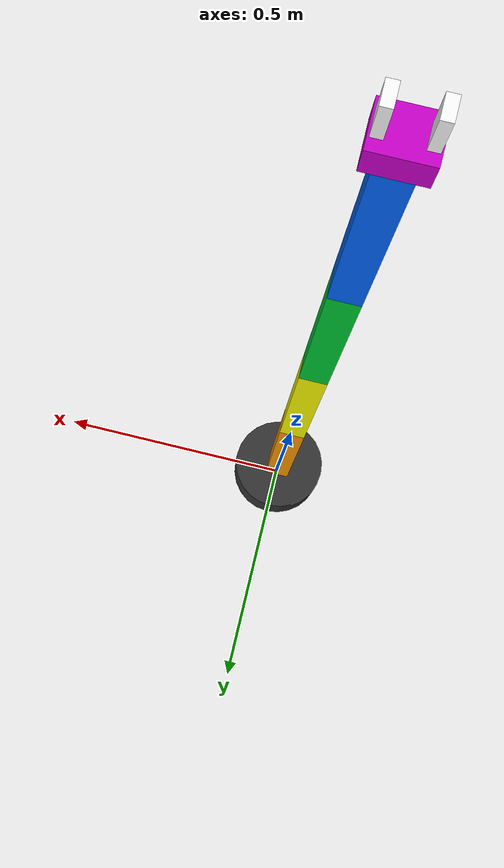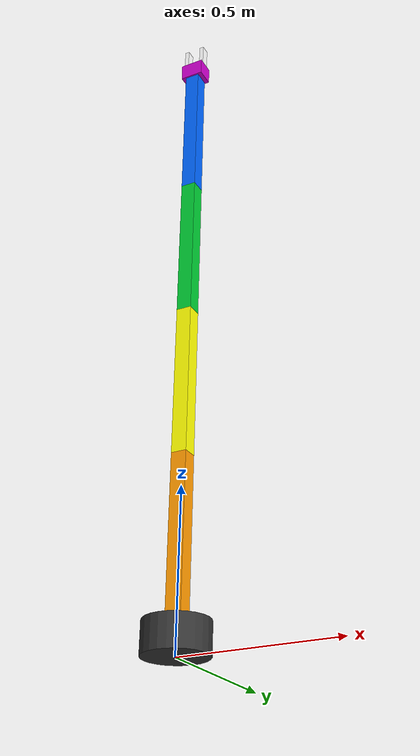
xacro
<?xml version="1.0"?>
<robot xmlns:xacro="http://www.ros.org/wiki/xacro" name="my_robot">
    <xacro:arg name="initial_positions_file" default="$(find my_robot_moveit_config)/config/initial_positions.yaml" />

    <!-- Import my_robot urdf file -->
    <xacro:include filename="$(find my_robot_description)/urdf/my_robot.urdf" />

    <!-- Import control_xacro -->
    <xacro:include filename="$(find my_robot_description)/urdf/my_robot.ros2_control_rviz.xacro" />

    <xacro:my_robot_ros2_control name="FakeSystem" initial_positions_file="$(find my_robot_moveit_config)/config/initial_positions.yaml"/>

</robot>

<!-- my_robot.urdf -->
<!-- |    This document was autogenerated by xacro from my_robot.urdf.xacro            | -->
<!-- |    EDITING THIS FILE BY HAND IS NOT RECOMMENDED                                 | -->
<robot name="my_robot">
  <link name="world"/>

  <joint name="virtual_joint" type="fixed">
    <parent link="world"/>
    <child link="base_link"/>
    <origin xyz="0 0 0" rpy="0 0 0"/>
  </joint>
  <link name="base_link">
    <visual>
      <geometry>
        <cylinder length="0.1" radius="0.1"/>
      </geometry>
      <origin rpy="0 0 0" xyz="0 0 0.05"/>
      <material name="gray">
        <color rgba="0.2 0.2 0.2 1"/>
      </material>
    </visual>
    <collision>
      <geometry>
        <cylinder length="0.1" radius="0.1"/>
      </geometry>
      <origin rpy="0 0 0" xyz="0 0 0.05"/>
    </collision>
    <inertial>
      <mass value="10.0"/>
      <inertia ixx="0.03333333333333334" ixy="0.0" ixz="0.0" iyy="0.03333333333333334" iyz="0.0" izz="0.05000000000000001"/>
    </inertial>
  </link>
  <link name="link1">
    <visual>
      <geometry>
        <box size="0.05 0.05 0.5"/>
      </geometry>
      <origin rpy="0 0 0" xyz="0 0 0.25"/>
      <material name="orange">
        <color rgba="1 0.6 0 1"/>
      </material>
    </visual>
    <collision>
      <geometry>
        <box size="0.05 0.05 0.5"/>
      </geometry>
      <origin rpy="0 0 0" xyz="0 0 0.25"/>
    </collision>
    <inertial>
      <mass value="1.0"/>
      <inertia ixx="0.021041666666666667" ixy="0.0" ixz="0.0" iyy="0.00041666666666666675" iyz="0.0" izz="0.021041666666666667"/>
    </inertial>
  </link>
  <joint name="joint1" type="revolute">
    <parent link="base_link"/>
    <child link="link1"/>
    <origin rpy="0 0 0" xyz="0 0 0.1"/>
    <axis xyz="0 0 1"/>
    <limit effort="100" lower="-3.14159" upper="3.14159" velocity="1.0"/>
  </joint>
  <link name="link2">
    <visual>
      <geometry>
        <box size="0.05 0.05 0.5"/>
      </geometry>
      <origin rpy="0 0 0" xyz="0 0 0.25"/>
      <material name="yellow">
        <color rgba="1 1 0 1"/>
      </material>
    </visual>
    <collision>
      <geometry>
        <box size="0.05 0.05 0.5"/>
      </geometry>
      <origin rpy="0 0 0" xyz="0 0 0.25"/>
    </collision>
    <inertial>
      <mass value="1.0"/>
      <inertia ixx="0.021041666666666667" ixy="0.0" ixz="0.0" iyy="0.00041666666666666675" iyz="0.0" izz="0.021041666666666667"/>
    </inertial>
  </link>
  <joint name="joint2" type="revolute">
    <parent link="link1"/>
    <child link="link2"/>
    <origin rpy="0 0 0" xyz="0 0 0.5"/>
    <axis xyz="0 1 0"/>
    <limit effort="100" lower="-1.57079" upper="1.57079" velocity="1.0"/>
  </joint>
  <link name="link3">
    <visual>
      <geometry>
        <box size="0.05 0.05 0.5"/>
      </geometry>
      <origin rpy="0 0 0" xyz="0 0 0.25"/>
      <material name="green">
        <color rgba="0 0.8 0.2 1"/>
      </material>
    </visual>
    <collision>
      <geometry>
        <box size="0.05 0.05 0.5"/>
      </geometry>
      <origin rpy="0 0 0" xyz="0 0 0.25"/>
    </collision>
    <inertial>
      <mass value="1.0"/>
      <inertia ixx="0.021041666666666667" ixy="0.0" ixz="0.0" iyy="0.00041666666666666675" iyz="0.0" izz="0.021041666666666667"/>
    </inertial>
  </link>
  <joint name="joint3" type="revolute">
    <parent link="link2"/>
    <child link="link3"/>
    <origin rpy="0 0 0" xyz="0 0 0.5"/>
    <axis xyz="0 1 0"/>
    <limit effort="100" lower="-2.0944" upper="2.0944" velocity="1.5"/>
  </joint>
  <link name="link4">
    <visual>
      <geometry>
        <box size="0.05 0.05 0.5"/>
      </geometry>
      <origin rpy="0 0 0" xyz="0 0 0.25"/>
      <material name="blue">
        <color rgba="0 0.4 1 1"/>
      </material>
    </visual>
    <collision>
      <geometry>
        <box size="0.05 0.05 0.5"/>
      </geometry>
      <origin rpy="0 0 0" xyz="0 0 0.25"/>
    </collision>
    <inertial>
      <mass value="1.0"/>
      <inertia ixx="0.021041666666666667" ixy="0.0" ixz="0.0" iyy="0.00041666666666666675" iyz="0.0" izz="0.021041666666666667"/>
    </inertial>
  </link>
  <joint name="joint4" type="revolute">
    <parent link="link3"/>
    <child link="link4"/>
    <origin rpy="0 0 0" xyz="0 0 0.5"/>
    <axis xyz="0 0 1"/>
    <limit effort="100" lower="-3.14159" upper="3.14159" velocity="2.0"/>
  </joint>
  <link name="link_wrist">
    <visual>
      <geometry>
        <box size="0.08 0.06 0.06"/>
      </geometry>
      <origin rpy="0 0 0" xyz="0 0 0.03"/>
      <material name="magenta">
        <color rgba="0.8 0 0.8 1"/>
      </material>
    </visual>
    <collision>
      <geometry>
        <box size="0.08 0.06 0.06"/>
      </geometry>
      <origin rpy="0 0 0" xyz="0 0 0.03"/>
    </collision>
    <inertial>
      <mass value="0.3"/>
      <inertia ixx="0.00017999999999999998" ixy="0.0" ixz="0.0" iyy="0.00025" iyz="0.0" izz="0.00025"/>
    </inertial>
  </link>
  <joint name="joint_wrist" type="revolute">
    <parent link="link4"/>
    <child link="link_wrist"/>
    <origin rpy="0 0 0" xyz="0 0 0.5"/>
    <axis xyz="0 1 0"/>
    <limit effort="50" lower="-1.5708" upper="1.5708" velocity="2.5"/>
  </joint>
  <link name="finger1">
    <visual>
      <geometry>
        <box size="0.015 0.03 0.08"/>
      </geometry>
      <origin rpy="0 0 0" xyz="0 0 0.04"/>
      <material name="white">
        <color rgba="1 1 1 1"/>
      </material>
    </visual>
    <collision>
      <geometry>
        <box size="0.015 0.03 0.08"/>
      </geometry>
      <origin rpy="0 0 0" xyz="0 0 0.04"/>
    </collision>
    <inertial>
      <mass value="0.05"/>
      <inertia ixx="3.0416666666666666e-05" ixy="0.0" ixz="0.0" iyy="2.760416666666667e-05" iyz="0.0" izz="4.6875e-06"/>
    </inertial>
  </link>
  <joint name="joint_finger1" type="prismatic">
    <parent link="link_wrist"/>
    <child link="finger1"/>
    <origin rpy="0 0 0" xyz="-0.03 0 0.06"/>
    <axis xyz="1 0 0"/>
    <limit effort="20" lower="0.0" upper="0.025" velocity="0.2"/>
  </joint>
  <link name="finger2">
    <visual>
      <geometry>
        <box size="0.015 0.03 0.08"/>
      </geometry>
      <origin rpy="0 0 0" xyz="0 0 0.04"/>
      <material name="white"/>
    </visual>
    <collision>
      <geometry>
        <box size="0.015 0.03 0.08"/>
      </geometry>
      <origin rpy="0 0 0" xyz="0 0 0.04"/>
    </collision>
    <inertial>
      <mass value="0.05"/>
      <inertia ixx="3.0416666666666666e-05" ixy="0.0" ixz="0.0" iyy="2.760416666666667e-05" iyz="0.0" izz="4.6875e-06"/>
    </inertial>
  </link>
  <joint name="joint_finger2" type="prismatic">
    <parent link="link_wrist"/>
    <child link="finger2"/>
    <origin rpy="0 0 0" xyz="0.03 0 0.06"/>
    <axis xyz="-1 0 0"/>
    <limit effort="20" lower="0.0" upper="0.025" velocity="0.2"/>
  </joint>
  <!-- ROS2 Control을 위한 시스템 정의 -->
</robot>
